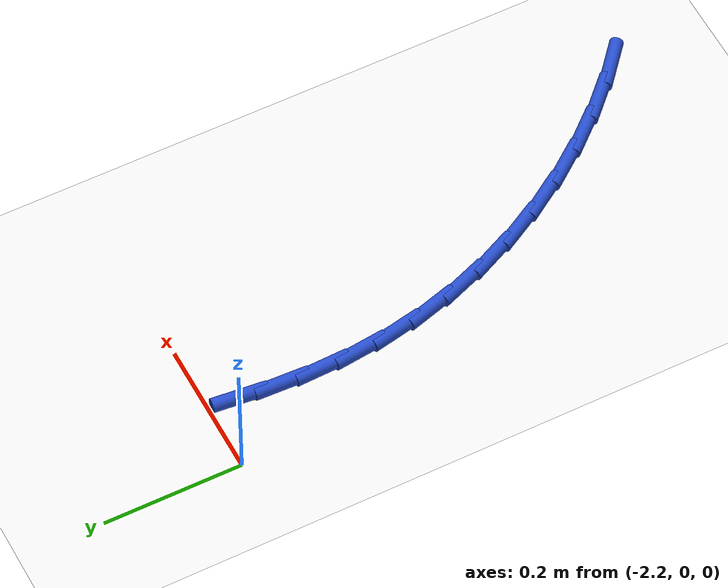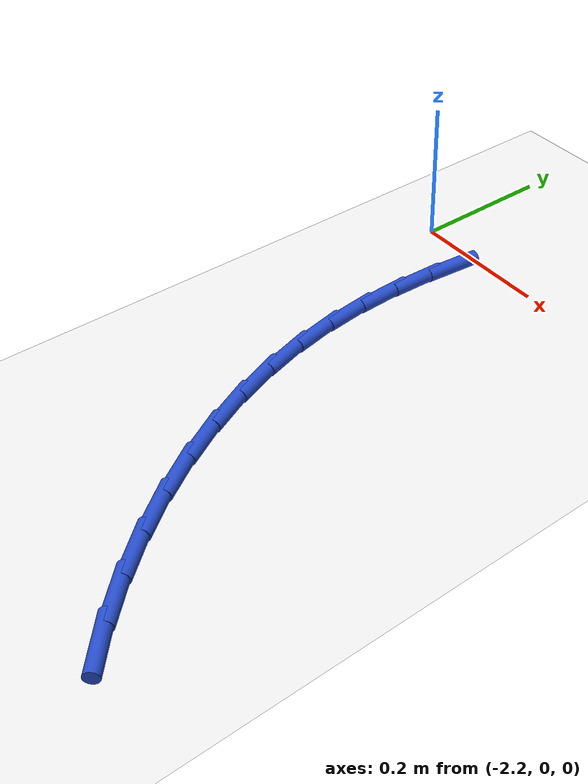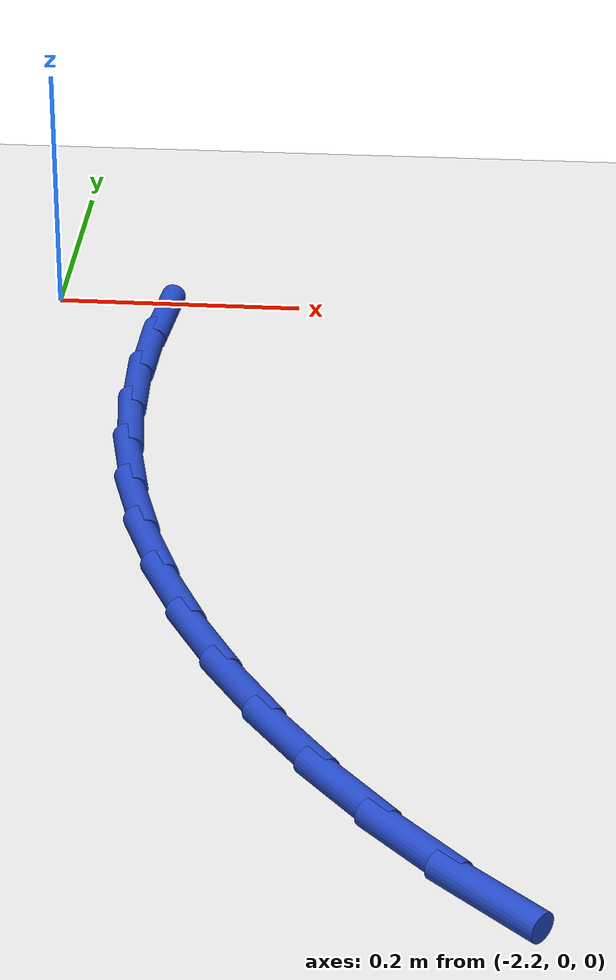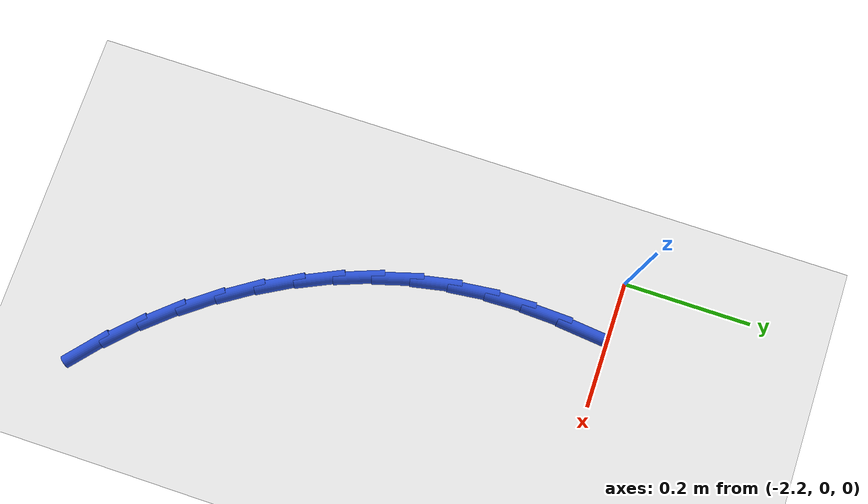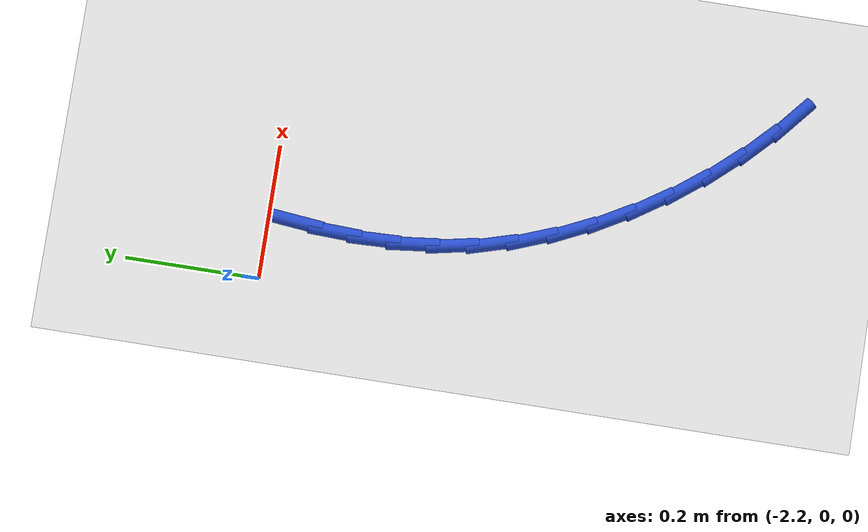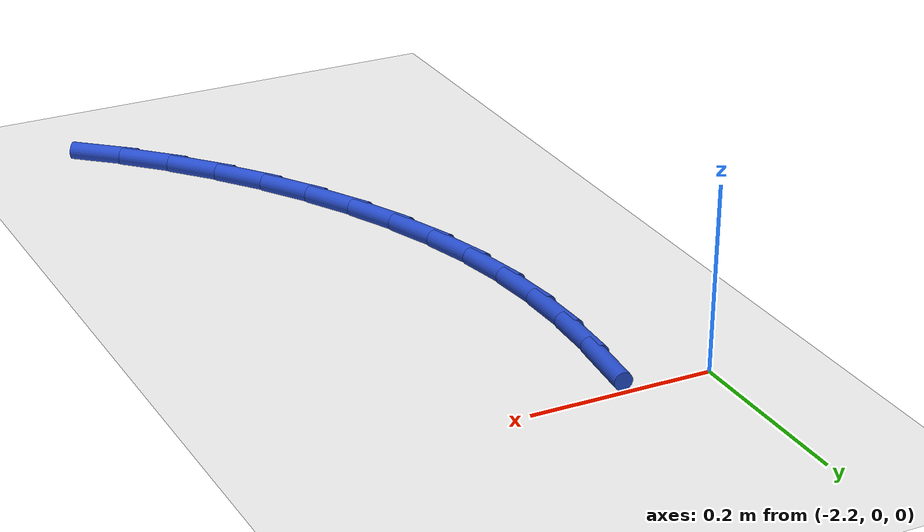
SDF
<sdf version="1.6">
 <world name="default">
  <model name="ground_plane">
   <static>1</static>
   <link name="link">
    <collision name="collision">
     <geometry><plane><normal>0 0 1</normal><size>100 100</size></plane></geometry>
     <surface><friction><ode><mu>100</mu><mu2>50</mu2></ode></friction></surface>
    </collision>
    <visual name="visual">
     <cast_shadows>0</cast_shadows>
     <geometry><plane><normal>0 0 1</normal><size>100 100</size></plane></geometry>
     <material>
      <script><uri>file://media/materials/scripts/gazebo.material</uri><name>Gazebo/WhiteGlow</name></script>
     </material>
    </visual>
   </link>
  </model>
  <model name="line">
   <link name="link_56">
    <pose>-2.1081552457632533 -0.04333629706218854 0.01 0 1.57 1.4705664038538708</pose>
    <collision name="collision">
     <geometry><cylinder><radius>0.01</radius><length>0.08</length></cylinder></geometry>
    </collision>
    <visual name="visual">
     <material>
      <script><name>Gazebo/Blue</name><uri>file://media/materials/scripts/gazebo.material</uri></script>
     </material>
     <geometry><cylinder><radius>0.01</radius><length>0.08</length></cylinder></geometry>
    </visual>
   </link>
   <link name="link_57">
    <pose>-2.1140610548718444 -0.10206146633524238 0.01 0 1.57 1.533520889853496</pose>
    <collision name="collision">
     <geometry><cylinder><radius>0.01</radius><length>0.08</length></cylinder></geometry>
    </collision>
    <visual name="visual">
     <material>
      <script><name>Gazebo/Blue</name><uri>file://media/materials/scripts/gazebo.material</uri></script>
     </material>
     <geometry><cylinder><radius>0.01</radius><length>0.08</length></cylinder></geometry>
    </visual>
   </link>
   <link name="link_58">
    <pose>-2.1162434053560792 -0.1605809582041916 0.01 0 1.57 -1.5369401003524805</pose>
    <collision name="collision">
     <geometry><cylinder><radius>0.01</radius><length>0.08</length></cylinder></geometry>
    </collision>
    <visual name="visual">
     <material>
      <script><name>Gazebo/Blue</name><uri>file://media/materials/scripts/gazebo.material</uri></script>
     </material>
     <geometry><cylinder><radius>0.01</radius><length>0.08</length></cylinder></geometry>
    </visual>
   </link>
   <link name="link_59">
    <pose>-2.114269615153672 -0.21885786037726085 0.01 0 1.57 -1.4581220084951956</pose>
    <collision name="collision">
     <geometry><cylinder><radius>0.01</radius><length>0.08</length></cylinder></geometry>
    </collision>
    <visual name="visual">
     <material>
      <script><name>Gazebo/Blue</name><uri>file://media/materials/scripts/gazebo.material</uri></script>
     </material>
     <geometry><cylinder><radius>0.01</radius><length>0.08</length></cylinder></geometry>
    </visual>
   </link>
   <link name="link_60">
    <pose>-2.1077070022023396 -0.276855260562672 0.01 0 1.57 -1.3727997066246298</pose>
    <collision name="collision">
     <geometry><cylinder><radius>0.01</radius><length>0.08</length></cylinder></geometry>
    </collision>
    <visual name="visual">
     <material>
      <script><name>Gazebo/Blue</name><uri>file://media/materials/scripts/gazebo.material</uri></script>
     </material>
     <geometry><cylinder><radius>0.01</radius><length>0.08</length></cylinder></geometry>
    </visual>
   </link>
   <link name="link_61">
    <pose>-2.0961359132060475 -0.3345304193528586 0.01 0 1.57 -1.2872014754584418</pose>
    <collision name="collision">
     <geometry><cylinder><radius>0.01</radius><length>0.08</length></cylinder></geometry>
    </collision>
    <visual name="visual">
     <material>
      <script><name>Gazebo/Blue</name><uri>file://media/materials/scripts/gazebo.material</uri></script>
     </material>
     <geometry><cylinder><radius>0.01</radius><length>0.08</length></cylinder></geometry>
    </visual>
   </link>
   <link name="link_62">
    <pose>-2.079477223138517 -0.3916882960693711 0.01 0 1.57 -1.206513104799623</pose>
    <collision name="collision">
     <geometry><cylinder><radius>0.01</radius><length>0.08</length></cylinder></geometry>
    </collision>
    <visual name="visual">
     <material>
      <script><name>Gazebo/Blue</name><uri>file://media/materials/scripts/gazebo.material</uri></script>
     </material>
     <geometry><cylinder><radius>0.01</radius><length>0.08</length></cylinder></geometry>
    </visual>
   </link>
   <link name="link_63">
    <pose>-2.058016716279423 -0.44797064434428246 0.01 0 1.57 -1.1301034746980694</pose>
    <collision name="collision">
     <geometry><cylinder><radius>0.01</radius><length>0.08</length></cylinder></geometry>
    </collision>
    <visual name="visual">
     <material>
      <script><name>Gazebo/Blue</name><uri>file://media/materials/scripts/gazebo.material</uri></script>
     </material>
     <geometry><cylinder><radius>0.01</radius><length>0.08</length></cylinder></geometry>
    </visual>
   </link>
   <link name="link_64">
    <pose>-2.0320580891925673 -0.5030112065404704 0.01 0 1.57 -1.057025220559317</pose>
    <collision name="collision">
     <geometry><cylinder><radius>0.01</radius><length>0.08</length></cylinder></geometry>
    </collision>
    <visual name="visual">
     <material>
      <script><name>Gazebo/Blue</name><uri>file://media/materials/scripts/gazebo.material</uri></script>
     </material>
     <geometry><cylinder><radius>0.01</radius><length>0.08</length></cylinder></geometry>
    </visual>
   </link>
   <link name="link_65">
    <pose>-2.0019050384417474 -0.5564437250208145 0.01 0 1.57 -0.986322850521084</pose>
    <collision name="collision">
     <geometry><cylinder><radius>0.01</radius><length>0.08</length></cylinder></geometry>
    </collision>
    <visual name="visual">
     <material>
      <script><name>Gazebo/Blue</name><uri>file://media/materials/scripts/gazebo.material</uri></script>
     </material>
     <geometry><cylinder><radius>0.01</radius><length>0.08</length></cylinder></geometry>
    </visual>
   </link>
   <link name="link_66">
    <pose>-1.9678612605907642 -0.6079019421481949 0.01 0 1.57 -0.9170478788632614</pose>
    <collision name="collision">
     <geometry><cylinder><radius>0.01</radius><length>0.08</length></cylinder></geometry>
    </collision>
    <visual name="visual">
     <material>
      <script><name>Gazebo/Blue</name><uri>file://media/materials/scripts/gazebo.material</uri></script>
     </material>
     <geometry><cylinder><radius>0.01</radius><length>0.08</length></cylinder></geometry>
    </visual>
   </link>
   <link name="link_67">
    <pose>-1.9302304522034182 -0.657019600285489 0.01 0 1.57 -0.8482605494044695</pose>
    <collision name="collision">
     <geometry><cylinder><radius>0.01</radius><length>0.08</length></cylinder></geometry>
    </collision>
    <visual name="visual">
     <material>
      <script><name>Gazebo/Blue</name><uri>file://media/materials/scripts/gazebo.material</uri></script>
     </material>
     <geometry><cylinder><radius>0.01</radius><length>0.08</length></cylinder></geometry>
    </visual>
   </link>
   <link name="link_68">
    <pose>-1.8893163098435086 -0.7034304417955779 0.01 0 1.57 -0.7790242652803973</pose>
    <collision name="collision">
     <geometry><cylinder><radius>0.01</radius><length>0.08</length></cylinder></geometry>
    </collision>
    <visual name="visual">
     <material>
      <script><name>Gazebo/Blue</name><uri>file://media/materials/scripts/gazebo.material</uri></script>
     </material>
     <geometry><cylinder><radius>0.01</radius><length>0.08</length></cylinder></geometry>
    </visual>
   </link>
   <link name="link_69">
    <pose>-1.845422530074836 -0.7467682090413389 0.01 0 1.57 -0.7083976178126988</pose>
    <collision name="collision">
     <geometry><cylinder><radius>0.01</radius><length>0.08</length></cylinder></geometry>
    </collision>
    <visual name="visual">
     <material>
      <script><name>Gazebo/Blue</name><uri>file://media/materials/scripts/gazebo.material</uri></script>
     </material>
     <geometry><cylinder><radius>0.01</radius><length>0.08</length></cylinder></geometry>
    </visual>
   </link>
  </model>
 </world>
</sdf>
